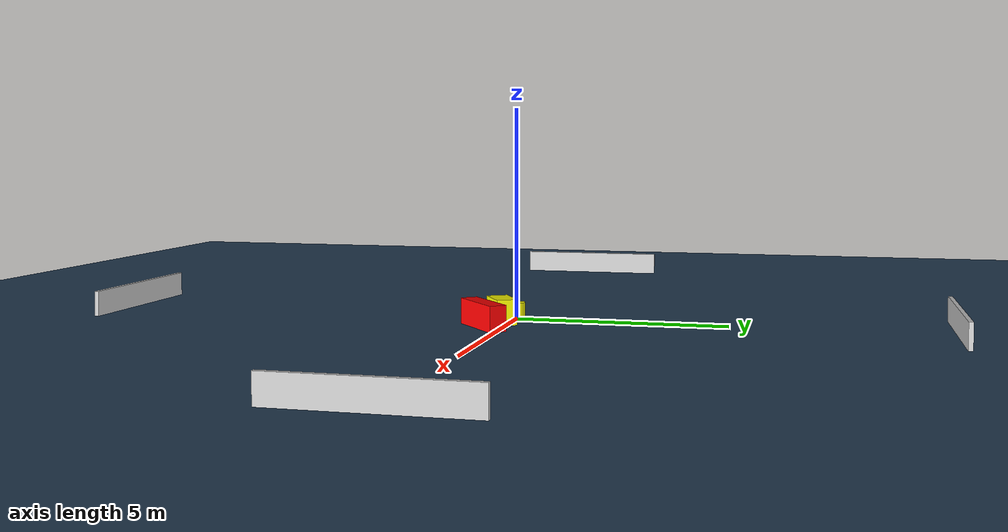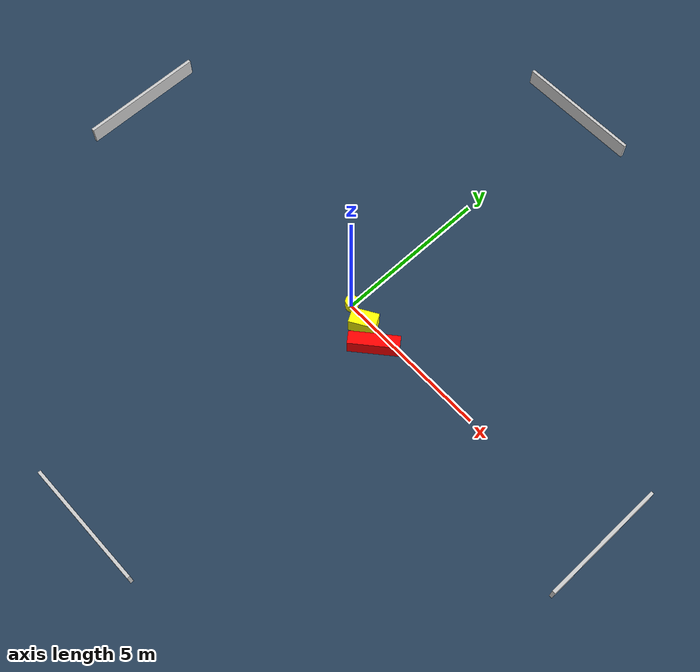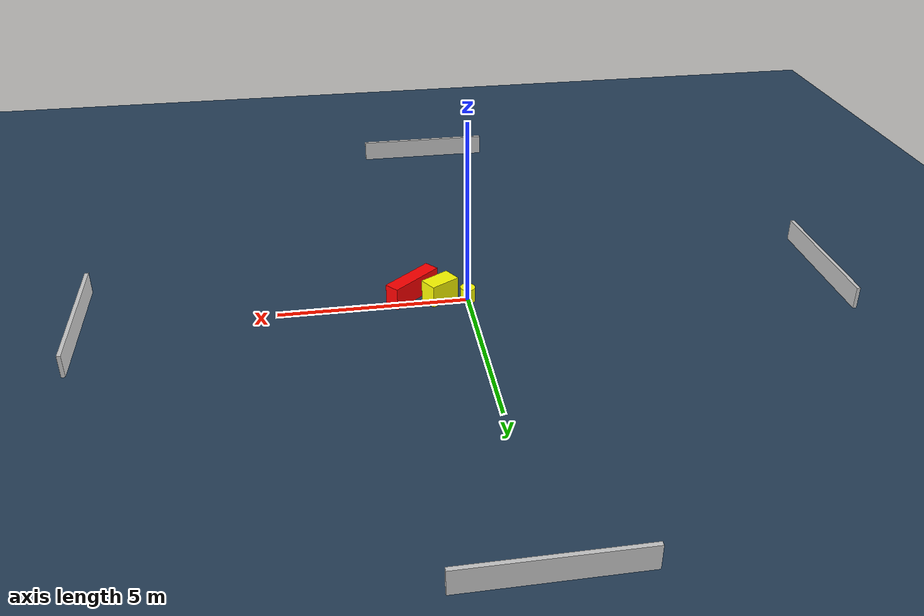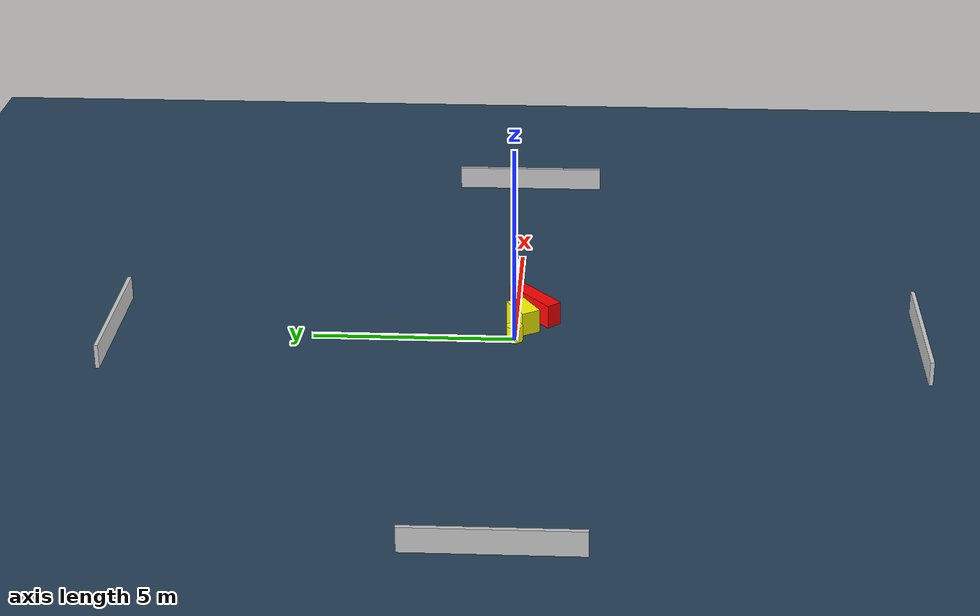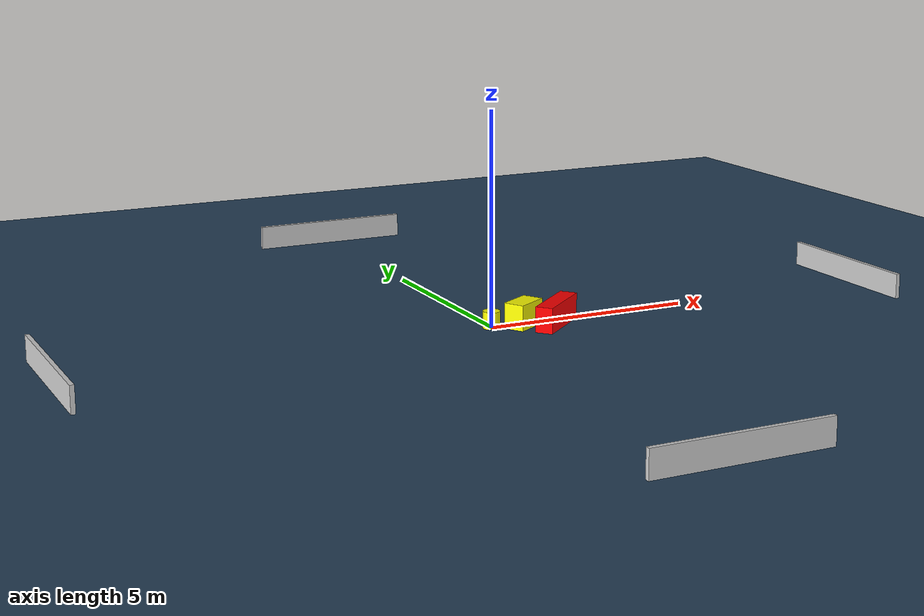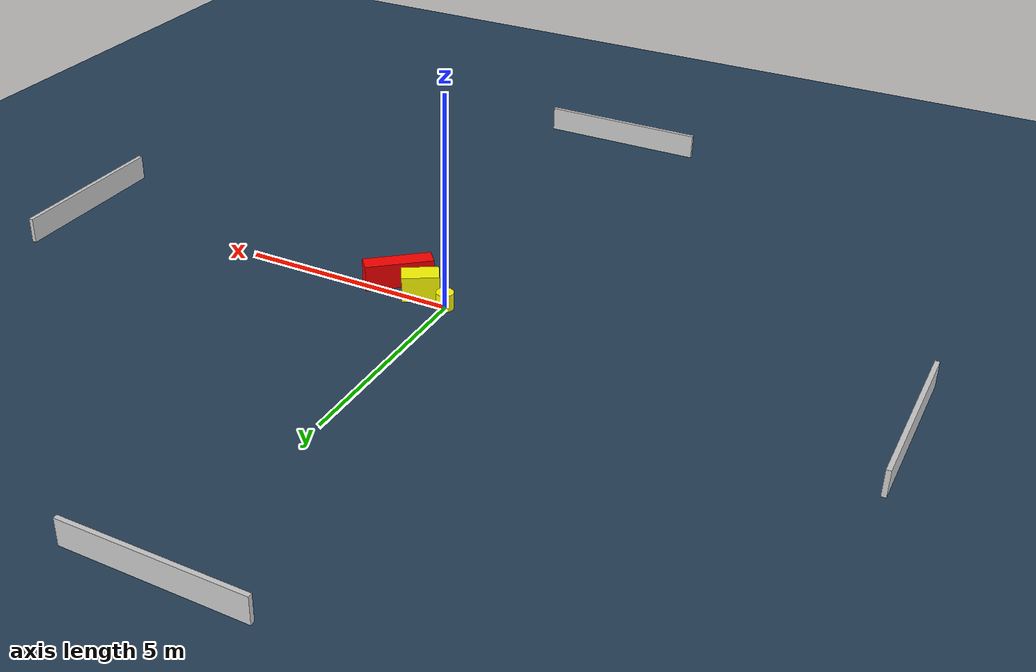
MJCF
<?xml version="1.0" ?>
<mujoco model="generated_environment">
  <option timestep="0.01" integrator="RK4" cone="elliptic"/>
  <default>
    <geom density="1"/>
  </default>
  <asset>
    <texture builtin="gradient" height="3072" name="skybox" rgb1="0.3 0.5 0.7" rgb2="0 0 0" type="skybox" width="512"/>
    <texture builtin="checker" height="300" name="groundplane" rgb1="0.2 0.3 0.4" rgb2="0.1 0.2 0.3" type="2d" width="300"/>
    <material name="groundplane" reflectance="0.2" texrepeat="5 5" texture="groundplane"/>
  </asset>
  <worldbody>
    <light dir="0 0 -1" directional="true" pos="0 0 1.5"/>
    <geom condim="3" friction="0.5 0.005 0.001" material="groundplane" name="floor" pos="0 0 0" size="0 0 0.05" type="plane"/>
    <body name="walls">
      <geom name="wall_1" condim="4" pos="-10.0 0.0 0.3" rgba="0.800000011920929 0.800000011920929 0.800000011920929 1.0" size="0.05 2.0 0.3" type="box"/>
      <geom name="wall_2" condim="4" pos="10.0 0.0 0.3" rgba="0.800000011920929 0.800000011920929 0.800000011920929 1.0" size="0.05 2.0 0.3" type="box"/>
      <geom name="wall_3" condim="4" pos="0.0 -10.0 0.3" rgba="0.800000011920929 0.800000011920929 0.800000011920929 1.0" size="2.0 0.05 0.3" type="box"/>
      <geom name="wall_4" condim="4" pos="0.0 10.0 0.3" rgba="0.800000011920929 0.800000011920929 0.800000011920929 1.0" size="2.0 0.05 0.3" type="box"/>
    </body>
    <body name="robot">
      <joint name="joint_x" type="slide" pos="0 0 0" axis="1 0 0"/>
      <joint name="joint_y" type="slide" pos="0 0 0" axis="0 1 0"/>
      <geom name="robot" type="cylinder" pos="0.0 0.0 0.2" size="0.2 0.2 0.0" mass="5.0" friction="1.0 0.005 0.0001" condim="4" rgba="1.0 1.0 0.0 1.0"/>
    </body>
    <body name="obstacle_1_movable">
      <geom name="obstacle_1_movable" condim="4" pos="0.7178508743539694 -0.18410006783137564 0.3" euler="0 0 120.85343668720148" friction="0.0 0.005 0.001" rgba="1.0 1.0 0.0 1.0" size="0.24795532228722256 0.41798241999634594 0.3" type="box" mass="0.1"/>
      <joint type="free"/>
    </body>
    <body name="obstacle_2_static">
      <geom name="obstacle_2_static" condim="4" pos="1.4332897809666645 -0.44953613668149317 0.3" euler="0 0 130.49920528027255" friction="0.0 0.005 0.001" rgba="1.0 0.0 0.0 1.0" size="0.20264168517308193 0.779651952033874 0.3" type="box"/>
    </body>
  </worldbody>
  <actuator>
    <motor name="actuator_x" joint="joint_x" gear="1" ctrlrange="-1 1"/>
    <motor name="actuator_y" joint="joint_y" gear="1" ctrlrange="-1 1"/>
  </actuator>
</mujoco>
